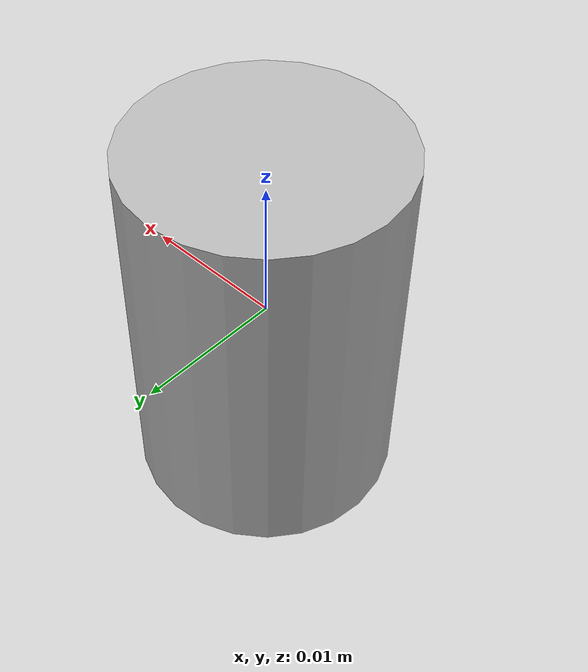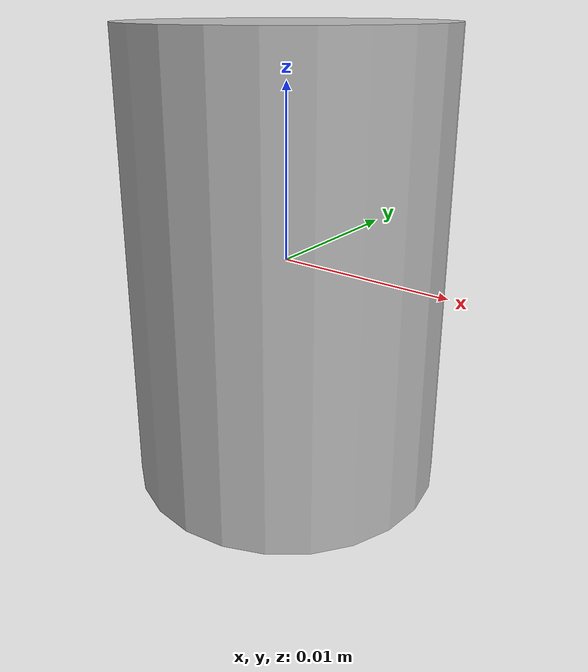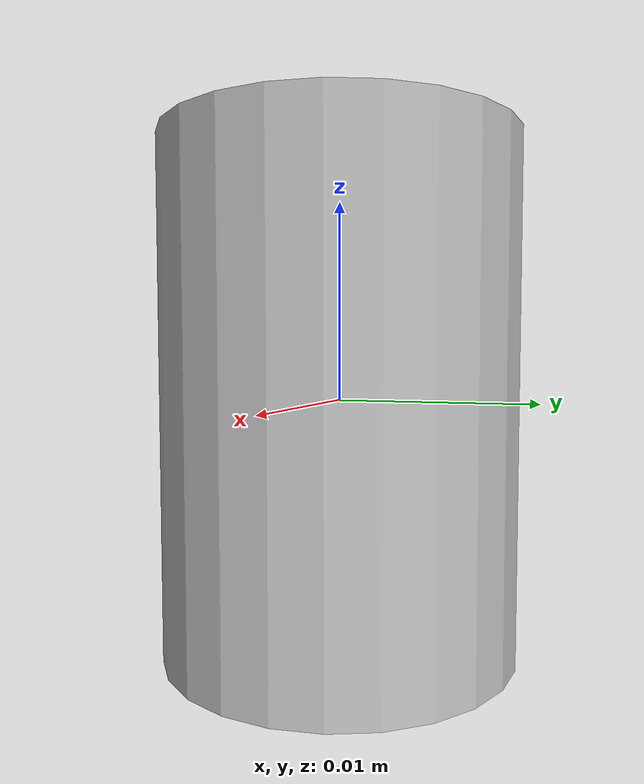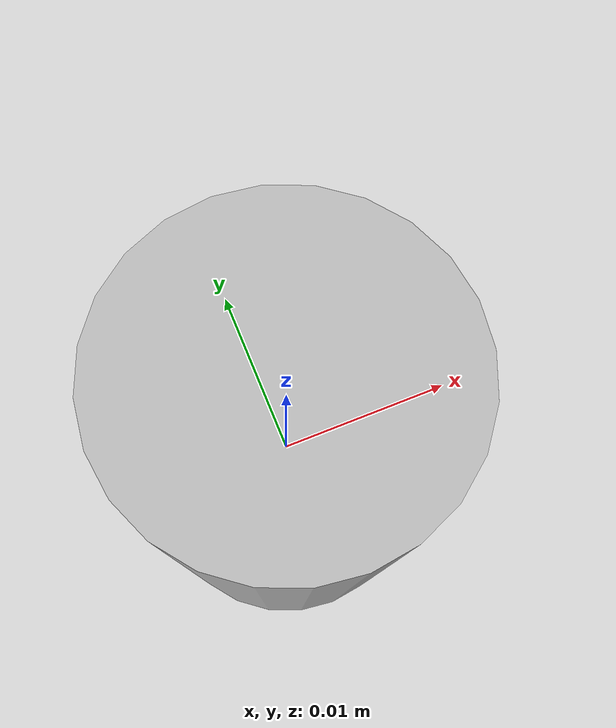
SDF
<?xml version="1.0"?>
<sdf version="1.6">
  <model name="leptrino_cfs018ca101u">
    <pose>0 0 0 0 0 0</pose>
    <static>false</static>
    <link name="mount">
      <gravity>false</gravity>
      <inertial>
        <mass>1000.0</mass>
        <inertia>
          <ixx>1.0</ixx><iyy>1.0</iyy><izz>1.0</izz>
          <ixy>0.0</ixy><ixz>0.0</ixz><iyz>0.0</iyz>
        </inertia>
      </inertial>
    </link>
    <link name="body">
      <inertial>
        <mass>0.02</mass>
        <inertia>
          <ixx>1e-6</ixx><iyy>1e-6</iyy><izz>1e-6</izz>
          <ixy>0.0</ixy><ixz>0.0</ixz><iyz>0.0</iyz>
        </inertia>
      </inertial>
      <collision name="tactile_collision">
        <geometry>
          <cylinder>
            <radius>0.009</radius>
            <length>0.026</length>
          </cylinder>
        </geometry>
      </collision>
      <!-- Bounding size for test framework -->
      <sensor_size>0.018 0.018 0.026</sensor_size>
      <visual name="visual">
        <geometry>
          <cylinder>
            <radius>0.009</radius>
            <length>0.026</length>
          </cylinder>
        </geometry>
      </visual>
      <sensor name="tactile_bumper" type="contact">
        <always_on>1.0</always_on>
        <update_rate>50.0</update_rate>
        <contact><collision>tactile_collision</collision></contact>
        <plugin name="tactile_bumper_plugin" filename="libgazebo_ros_bumper.so">
          <robotNamespace>/leptrino_cfs018ca101u</robotNamespace>
          <topicName>bumper_states</topicName>
          <frameName>body</frameName>
        </plugin>
      </sensor>
    </link>
    <joint name="ft_joint" type="fixed">
      <parent>mount</parent>
      <child>body</child>
      <sensor name="ft_sensor" type="force_torque">
        <always_on>true</always_on>
        <update_rate>1000.0</update_rate>
        <visualize>false</visualize>
        <force_torque>
          <frame>child</frame>
          <measure_direction>child_to_parent</measure_direction>
        </force_torque>
      </sensor>
    </joint>
  </model>
</sdf>
